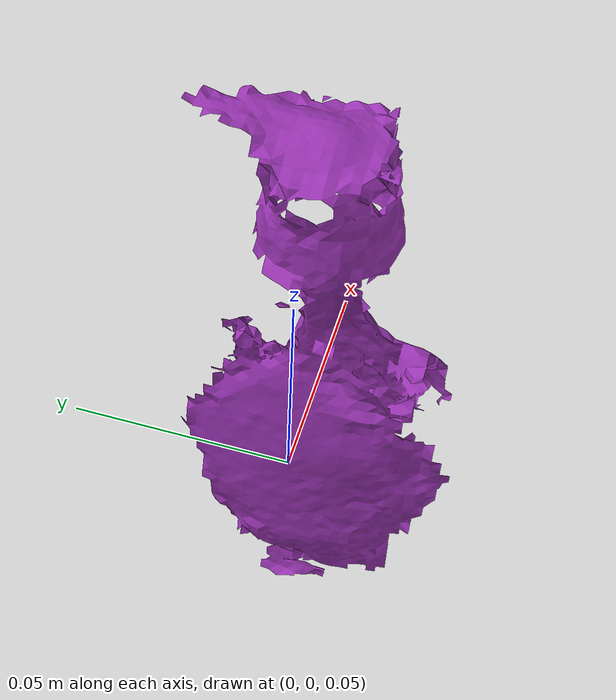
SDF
<?xml version='1.0'?>
<sdf version="1.4">
  <model name="softsoap_purple">
    <static>false</static>
    <link name="link">
      <inertial>
        <pose>0.0028503212308819666 -0.004021206538439278 0.08325539543013778 3.053143777620007 0.016660519724256525 -0.22449881366531257</pose>
        <mass>0.014685670920835734</mass>
        <inertia>
          <ixx>1.3842468538992678e-05</ixx>
          <ixy>-3.495753554751356e-22</ixy>
          <ixz>-4.6390558712998364e-23</ixz>
          <iyy>1.2726109770968248e-05</iyy>
          <iyz>-2.126178110128311e-21</iyz>
          <izz>3.7492845138617682e-06</izz>
        </inertia>
      </inertial>
      <collision name="collision">
        <geometry>
          <mesh>
            <!-- Use a downsampled mesh for collisions -->
            <uri>model:///softsoap_purple/softsoap_purple_250_collision.obj</uri>
	        </mesh>
        </geometry>
        <surface>
      </surface>
      </collision>
      <visual name="visual">
        <geometry>
          <mesh>
            <uri>model:///softsoap_purple/optimized_tsdf_texture_mapped_mesh.obj</uri>
	        </mesh>
        </geometry>
        <material>
          <script>
            <uri>model:///softsoap_purple/softsoap_purple.material</uri>
            <name>softsoap_purple</name>
          </script>
        </material>
      </visual>
    </link>
  </model>
</sdf>
